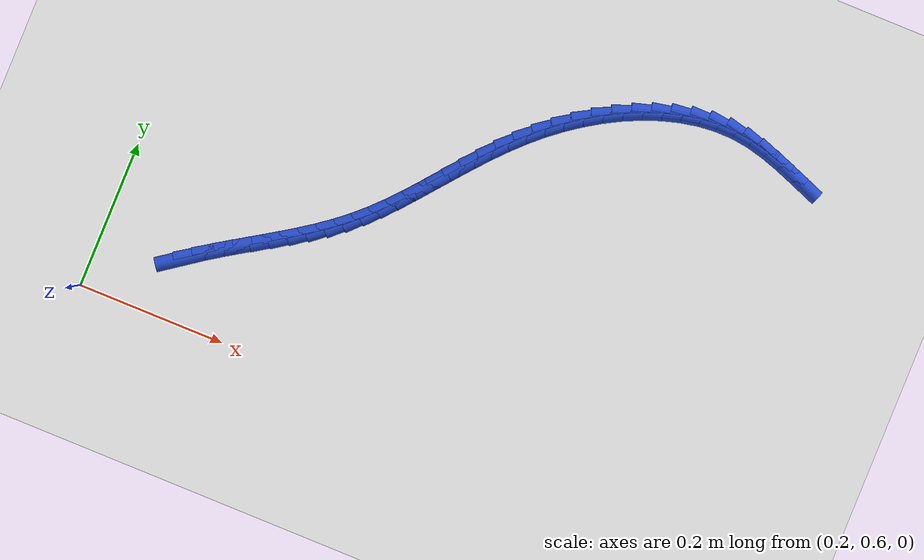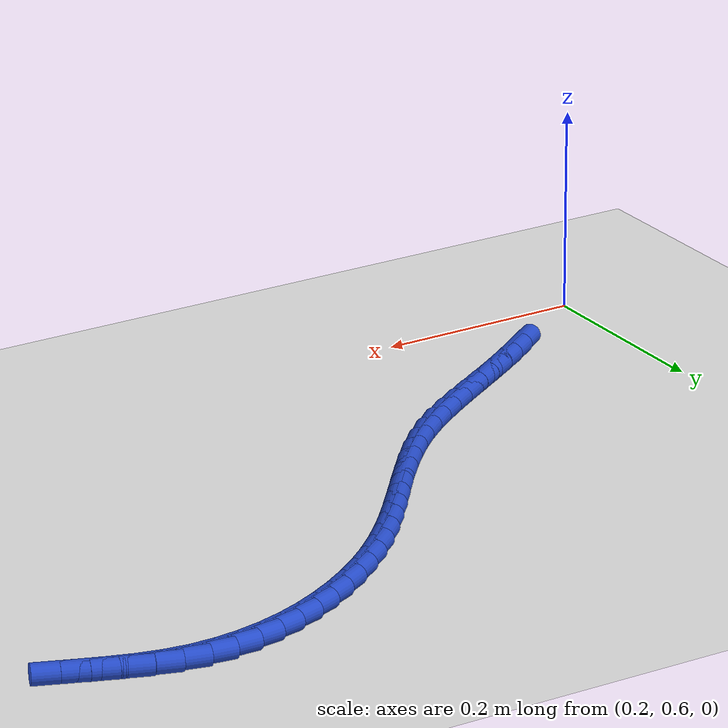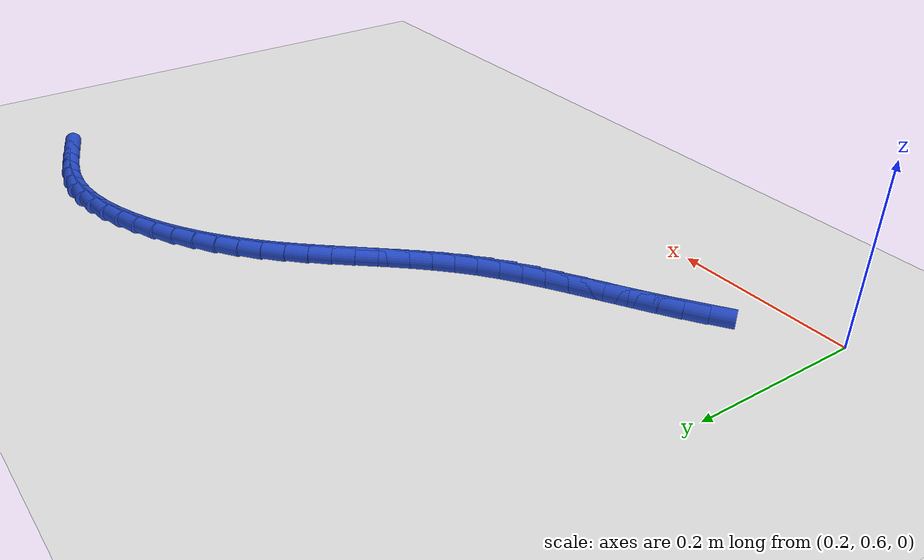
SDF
<sdf version="1.6">
 <world name="default">
  <model name="ground_plane">
   <static>1</static>
   <link name="link">
    <collision name="collision">
     <geometry><plane><normal>0 0 1</normal><size>100 100</size></plane></geometry>
     <surface><friction><ode><mu>100</mu><mu2>50</mu2></ode></friction></surface>
    </collision>
    <visual name="visual">
     <cast_shadows>0</cast_shadows>
     <geometry><plane><normal>0 0 1</normal><size>100 100</size></plane></geometry>
     <material>
      <script><uri>file://media/materials/scripts/gazebo.material</uri><name>Gazebo/WhiteGlow</name></script>
     </material>
    </visual>
   </link>
  </model>
  <model name="line">
   <link name="link_31">
    <pose>0.31368566309640433 0.6857718107445425 0.01 0 1.57 0.6217759222436743</pose>
    <collision name="collision">
     <geometry><cylinder><radius>0.01</radius><length>0.08</length></cylinder></geometry>
    </collision>
    <visual name="visual">
     <material>
      <script><name>Gazebo/Blue</name><uri>file://media/materials/scripts/gazebo.material</uri></script>
     </material>
     <geometry><cylinder><radius>0.01</radius><length>0.08</length></cylinder></geometry>
    </visual>
   </link>
   <link name="link_32">
    <pose>0.33407692760737157 0.7003840575855007 0.01 0 1.57 0.5919932194578194</pose>
    <collision name="collision">
     <geometry><cylinder><radius>0.01</radius><length>0.08</length></cylinder></geometry>
    </collision>
    <visual name="visual">
     <material>
      <script><name>Gazebo/Blue</name><uri>file://media/materials/scripts/gazebo.material</uri></script>
     </material>
     <geometry><cylinder><radius>0.01</radius><length>0.08</length></cylinder></geometry>
    </visual>
   </link>
   <link name="link_33">
    <pose>0.3549926616917402 0.714448765509468 0.01 0 1.57 0.5733930223101903</pose>
    <collision name="collision">
     <geometry><cylinder><radius>0.01</radius><length>0.08</length></cylinder></geometry>
    </collision>
    <visual name="visual">
     <material>
      <script><name>Gazebo/Blue</name><uri>file://media/materials/scripts/gazebo.material</uri></script>
     </material>
     <geometry><cylinder><radius>0.01</radius><length>0.08</length></cylinder></geometry>
    </visual>
   </link>
   <link name="link_34">
    <pose>0.37623146227066 0.7281640611793464 0.01 0 1.57 0.565761881200285</pose>
    <collision name="collision">
     <geometry><cylinder><radius>0.01</radius><length>0.08</length></cylinder></geometry>
    </collision>
    <visual name="visual">
     <material>
      <script><name>Gazebo/Blue</name><uri>file://media/materials/scripts/gazebo.material</uri></script>
     </material>
     <geometry><cylinder><radius>0.01</radius><length>0.08</length></cylinder></geometry>
    </visual>
   </link>
   <link name="link_35">
    <pose>0.3975919262652808 0.741728071258038 0.01 0 1.57 0.5690193621223153</pose>
    <collision name="collision">
     <geometry><cylinder><radius>0.01</radius><length>0.08</length></cylinder></geometry>
    </collision>
    <visual name="visual">
     <material>
      <script><name>Gazebo/Blue</name><uri>file://media/materials/scripts/gazebo.material</uri></script>
     </material>
     <geometry><cylinder><radius>0.01</radius><length>0.08</length></cylinder></geometry>
    </visual>
   </link>
   <link name="link_36">
    <pose>0.4188726505967526 0.7553389224084452 0.01 0 1.57 0.5832434651503329</pose>
    <collision name="collision">
     <geometry><cylinder><radius>0.01</radius><length>0.08</length></cylinder></geometry>
    </collision>
    <visual name="visual">
     <material>
      <script><name>Gazebo/Blue</name><uri>file://media/materials/scripts/gazebo.material</uri></script>
     </material>
     <geometry><cylinder><radius>0.01</radius><length>0.08</length></cylinder></geometry>
    </visual>
   </link>
   <link name="link_37">
    <pose>0.4398722321862252 0.7691947412934705 0.01 0 1.57 0.608661786370115</pose>
    <collision name="collision">
     <geometry><cylinder><radius>0.01</radius><length>0.08</length></cylinder></geometry>
    </collision>
    <visual name="visual">
     <material>
      <script><name>Gazebo/Blue</name><uri>file://media/materials/scripts/gazebo.material</uri></script>
     </material>
     <geometry><cylinder><radius>0.01</radius><length>0.08</length></cylinder></geometry>
    </visual>
   </link>
   <link name="link_38">
    <pose>0.46038926795484836 0.7834936545760157 0.01 0 1.57 0.6456055839524886</pose>
    <collision name="collision">
     <geometry><cylinder><radius>0.01</radius><length>0.08</length></cylinder></geometry>
    </collision>
    <visual name="visual">
     <material>
      <script><name>Gazebo/Blue</name><uri>file://media/materials/scripts/gazebo.material</uri></script>
     </material>
     <geometry><cylinder><radius>0.01</radius><length>0.08</length></cylinder></geometry>
    </visual>
   </link>
   <link name="link_39">
    <pose>0.48022235482377185 0.7984337889189832 0.01 0 1.57 0.6944174701596125</pose>
    <collision name="collision">
     <geometry><cylinder><radius>0.01</radius><length>0.08</length></cylinder></geometry>
    </collision>
    <visual name="visual">
     <material>
      <script><name>Gazebo/Blue</name><uri>file://media/materials/scripts/gazebo.material</uri></script>
     </material>
     <geometry><cylinder><radius>0.01</radius><length>0.08</length></cylinder></geometry>
    </visual>
   </link>
   <link name="link_40">
    <pose>0.49917008971414545 0.8142132709852751 0.01 0 1.57 0.7520376965207981</pose>
    <collision name="collision">
     <geometry><cylinder><radius>0.01</radius><length>0.08</length></cylinder></geometry>
    </collision>
    <visual name="visual">
     <material>
      <script><name>Gazebo/Blue</name><uri>file://media/materials/scripts/gazebo.material</uri></script>
     </material>
     <geometry><cylinder><radius>0.01</radius><length>0.08</length></cylinder></geometry>
    </visual>
   </link>
   <link name="link_41">
    <pose>0.5170914558307381 0.8309770935633699 0.01 0 1.57 0.802877534121172</pose>
    <collision name="collision">
     <geometry><cylinder><radius>0.01</radius><length>0.08</length></cylinder></geometry>
    </collision>
    <visual name="visual">
     <material>
      <script><name>Gazebo/Blue</name><uri>file://media/materials/scripts/gazebo.material</uri></script>
     </material>
     <geometry><cylinder><radius>0.01</radius><length>0.08</length></cylinder></geometry>
    </visual>
   </link>
   <link name="link_42">
    <pose>0.5341289133847011 0.8486208181014416 0.01 0 1.57 0.8419807267060411</pose>
    <collision name="collision">
     <geometry><cylinder><radius>0.01</radius><length>0.08</length></cylinder></geometry>
    </collision>
    <visual name="visual">
     <material>
      <script><name>Gazebo/Blue</name><uri>file://media/materials/scripts/gazebo.material</uri></script>
     </material>
     <geometry><cylinder><radius>0.01</radius><length>0.08</length></cylinder></geometry>
    </visual>
   </link>
   <link name="link_43">
    <pose>0.5505080331699483 0.8669668770686445 0.01 0 1.57 0.8691960006259388</pose>
    <collision name="collision">
     <geometry><cylinder><radius>0.01</radius><length>0.08</length></cylinder></geometry>
    </collision>
    <visual name="visual">
     <material>
      <script><name>Gazebo/Blue</name><uri>file://media/materials/scripts/gazebo.material</uri></script>
     </material>
     <geometry><cylinder><radius>0.01</radius><length>0.08</length></cylinder></geometry>
    </visual>
   </link>
   <link name="link_44">
    <pose>0.5664543967383258 0.8858376934682319 0.01 0 1.57 0.8845878296593362</pose>
    <collision name="collision">
     <geometry><cylinder><radius>0.01</radius><length>0.08</length></cylinder></geometry>
    </collision>
    <visual name="visual">
     <material>
      <script><name>Gazebo/Blue</name><uri>file://media/materials/scripts/gazebo.material</uri></script>
     </material>
     <geometry><cylinder><radius>0.01</radius><length>0.08</length></cylinder></geometry>
    </visual>
   </link>
   <link name="link_45">
    <pose>0.5821935856416789 0.9050556903034573 0.01 0 1.57 0.8883191486361897</pose>
    <collision name="collision">
     <geometry><cylinder><radius>0.01</radius><length>0.08</length></cylinder></geometry>
    </collision>
    <visual name="visual">
     <material>
      <script><name>Gazebo/Blue</name><uri>file://media/materials/scripts/gazebo.material</uri></script>
     </material>
     <geometry><cylinder><radius>0.01</radius><length>0.08</length></cylinder></geometry>
    </visual>
   </link>
   <link name="link_46">
    <pose>0.5979511814318536 0.924443290577574 0.01 0 1.57 0.8805852383725722</pose>
    <collision name="collision">
     <geometry><cylinder><radius>0.01</radius><length>0.08</length></cylinder></geometry>
    </collision>
    <visual name="visual">
     <material>
      <script><name>Gazebo/Blue</name><uri>file://media/materials/scripts/gazebo.material</uri></script>
     </material>
     <geometry><cylinder><radius>0.01</radius><length>0.08</length></cylinder></geometry>
    </visual>
   </link>
   <link name="link_47">
    <pose>0.613952765660696 0.9438229172938362 0.01 0 1.57 0.8615970234336856</pose>
    <collision name="collision">
     <geometry><cylinder><radius>0.01</radius><length>0.08</length></cylinder></geometry>
    </collision>
    <visual name="visual">
     <material>
      <script><name>Gazebo/Blue</name><uri>file://media/materials/scripts/gazebo.material</uri></script>
     </material>
     <geometry><cylinder><radius>0.01</radius><length>0.08</length></cylinder></geometry>
    </visual>
   </link>
   <link name="link_48">
    <pose>0.6304239198800514 0.9630169934554969 0.01 0 1.57 0.8316088480989581</pose>
    <collision name="collision">
     <geometry><cylinder><radius>0.01</radius><length>0.08</length></cylinder></geometry>
    </collision>
    <visual name="visual">
     <material>
      <script><name>Gazebo/Blue</name><uri>file://media/materials/scripts/gazebo.material</uri></script>
     </material>
     <geometry><cylinder><radius>0.01</radius><length>0.08</length></cylinder></geometry>
    </visual>
   </link>
   <link name="link_49">
    <pose>0.6475902256417657 0.9818479420658095 0.01 0 1.57 0.7909841521365294</pose>
    <collision name="collision">
     <geometry><cylinder><radius>0.01</radius><length>0.08</length></cylinder></geometry>
    </collision>
    <visual name="visual">
     <material>
      <script><name>Gazebo/Blue</name><uri>file://media/materials/scripts/gazebo.material</uri></script>
     </material>
     <geometry><cylinder><radius>0.01</radius><length>0.08</length></cylinder></geometry>
    </visual>
   </link>
   <link name="link_50">
    <pose>0.6656772644976847 1.0001381861280276 0.01 0 1.57 0.7403847587094323</pose>
    <collision name="collision">
     <geometry><cylinder><radius>0.01</radius><length>0.08</length></cylinder></geometry>
    </collision>
    <visual name="visual">
     <material>
      <script><name>Gazebo/Blue</name><uri>file://media/materials/scripts/gazebo.material</uri></script>
     </material>
     <geometry><cylinder><radius>0.01</radius><length>0.08</length></cylinder></geometry>
    </visual>
   </link>
   <link name="link_51">
    <pose>0.6849066985267032 1.0177099530618334 0.01 0 1.57 0.684148161096767</pose>
    <collision name="collision">
     <geometry><cylinder><radius>0.01</radius><length>0.08</length></cylinder></geometry>
    </collision>
    <visual name="visual">
     <material>
      <script><name>Gazebo/Blue</name><uri>file://media/materials/scripts/gazebo.material</uri></script>
     </material>
     <geometry><cylinder><radius>0.01</radius><length>0.08</length></cylinder></geometry>
    </visual>
   </link>
   <link name="link_52">
    <pose>0.7053442329618272 1.034377687965857 0.01 0 1.57 0.6265645961025219</pose>
    <collision name="collision">
     <geometry><cylinder><radius>0.01</radius><length>0.08</length></cylinder></geometry>
    </collision>
    <visual name="visual">
     <material>
      <script><name>Gazebo/Blue</name><uri>file://media/materials/scripts/gazebo.material</uri></script>
     </material>
     <geometry><cylinder><radius>0.01</radius><length>0.08</length></cylinder></geometry>
    </visual>
   </link>
   <link name="link_53">
    <pose>0.7268508794668234 1.0499456216319174 0.01 0 1.57 0.5668106795794612</pose>
    <collision name="collision">
     <geometry><cylinder><radius>0.01</radius><length>0.08</length></cylinder></geometry>
    </collision>
    <visual name="visual">
     <material>
      <script><name>Gazebo/Blue</name><uri>file://media/materials/scripts/gazebo.material</uri></script>
     </material>
     <geometry><cylinder><radius>0.01</radius><length>0.08</length></cylinder></geometry>
    </visual>
   </link>
   <link name="link_54">
    <pose>0.7492737563738415 1.0642172915679537 0.01 0 1.57 0.5037209179061823</pose>
    <collision name="collision">
     <geometry><cylinder><radius>0.01</radius><length>0.08</length></cylinder></geometry>
    </collision>
    <visual name="visual">
     <material>
      <script><name>Gazebo/Blue</name><uri>file://media/materials/scripts/gazebo.material</uri></script>
     </material>
     <geometry><cylinder><radius>0.01</radius><length>0.08</length></cylinder></geometry>
    </visual>
   </link>
   <link name="link_55">
    <pose>0.7724599820150326 1.0769962352819054 0.01 0 1.57 0.4360967059583024</pose>
    <collision name="collision">
     <geometry><cylinder><radius>0.01</radius><length>0.08</length></cylinder></geometry>
    </collision>
    <visual name="visual">
     <material>
      <script><name>Gazebo/Blue</name><uri>file://media/materials/scripts/gazebo.material</uri></script>
     </material>
     <geometry><cylinder><radius>0.01</radius><length>0.08</length></cylinder></geometry>
    </visual>
   </link>
   <link name="link_56">
    <pose>0.7962566747225474 1.088085990281712 0.01 0 1.57 0.3626958006954847</pose>
    <collision name="collision">
     <geometry><cylinder><radius>0.01</radius><length>0.08</length></cylinder></geometry>
    </collision>
    <visual name="visual">
     <material>
      <script><name>Gazebo/Blue</name><uri>file://media/materials/scripts/gazebo.material</uri></script>
     </material>
     <geometry><cylinder><radius>0.01</radius><length>0.08</length></cylinder></geometry>
    </visual>
   </link>
   <link name="link_57">
    <pose>0.8205109528285361 1.0972900940753127 0.01 0 1.57 0.2822531162521812</pose>
    <collision name="collision">
     <geometry><cylinder><radius>0.01</radius><length>0.08</length></cylinder></geometry>
    </collision>
    <visual name="visual">
     <material>
      <script><name>Gazebo/Blue</name><uri>file://media/materials/scripts/gazebo.material</uri></script>
     </material>
     <geometry><cylinder><radius>0.01</radius><length>0.08</length></cylinder></geometry>
    </visual>
   </link>
   <link name="link_58">
    <pose>0.8450699346651498 1.104412084170648 0.01 0 1.57 0.19355021864870442</pose>
    <collision name="collision">
     <geometry><cylinder><radius>0.01</radius><length>0.08</length></cylinder></geometry>
    </collision>
    <visual name="visual">
     <material>
      <script><name>Gazebo/Blue</name><uri>file://media/materials/scripts/gazebo.material</uri></script>
     </material>
     <geometry><cylinder><radius>0.01</radius><length>0.08</length></cylinder></geometry>
    </visual>
   </link>
   <link name="link_59">
    <pose>0.8697807385645391 1.1092554980756564 0.01 0 1.57 0.09555591956888013</pose>
    <collision name="collision">
     <geometry><cylinder><radius>0.01</radius><length>0.08</length></cylinder></geometry>
    </collision>
    <visual name="visual">
     <material>
      <script><name>Gazebo/Blue</name><uri>file://media/materials/scripts/gazebo.material</uri></script>
     </material>
     <geometry><cylinder><radius>0.01</radius><length>0.08</length></cylinder></geometry>
    </visual>
   </link>
   <link name="link_60">
    <pose>0.8944904828588546 1.111623873298278 0.01 0 1.57 -0.012343744402836077</pose>
    <collision name="collision">
     <geometry><cylinder><radius>0.01</radius><length>0.08</length></cylinder></geometry>
    </collision>
    <visual name="visual">
     <material>
      <script><name>Gazebo/Blue</name><uri>file://media/materials/scripts/gazebo.material</uri></script>
     </material>
     <geometry><cylinder><radius>0.01</radius><length>0.08</length></cylinder></geometry>
    </visual>
   </link>
   <link name="link_61">
    <pose>0.9190462858802466 1.1113207473464515 0.01 0 1.57 -0.12947252034225032</pose>
    <collision name="collision">
     <geometry><cylinder><radius>0.01</radius><length>0.08</length></cylinder></geometry>
    </collision>
    <visual name="visual">
     <material>
      <script><name>Gazebo/Blue</name><uri>file://media/materials/scripts/gazebo.material</uri></script>
     </material>
     <geometry><cylinder><radius>0.01</radius><length>0.08</length></cylinder></geometry>
    </visual>
   </link>
   <link name="link_62">
    <pose>0.9432990869372014 1.1081630118040486 0.01 0 1.57 -0.2369191574358031</pose>
    <collision name="collision">
     <geometry><cylinder><radius>0.01</radius><length>0.08</length></cylinder></geometry>
    </collision>
    <visual name="visual">
     <material>
      <script><name>Gazebo/Blue</name><uri>file://media/materials/scripts/gazebo.material</uri></script>
     </material>
     <geometry><cylinder><radius>0.01</radius><length>0.08</length></cylinder></geometry>
    </visual>
   </link>
   <link name="link_63">
    <pose>0.967219907651552 1.102387238511926 0.01 0 1.57 -0.31272852563635484</pose>
    <collision name="collision">
     <geometry><cylinder><radius>0.01</radius><length>0.08</length></cylinder></geometry>
    </collision>
    <visual name="visual">
     <material>
      <script><name>Gazebo/Blue</name><uri>file://media/materials/scripts/gazebo.material</uri></script>
     </material>
     <geometry><cylinder><radius>0.01</radius><length>0.08</length></cylinder></geometry>
    </visual>
   </link>
   <link name="link_64">
    <pose>0.9909210442095936 1.0947237451746465 0.01 0 1.57 -0.3566112879373679</pose>
    <collision name="collision">
     <geometry><cylinder><radius>0.01</radius><length>0.08</length></cylinder></geometry>
    </collision>
    <visual name="visual">
     <material>
      <script><name>Gazebo/Blue</name><uri>file://media/materials/scripts/gazebo.material</uri></script>
     </material>
     <geometry><cylinder><radius>0.01</radius><length>0.08</length></cylinder></geometry>
    </visual>
   </link>
   <link name="link_65">
    <pose>1.014522887352018 1.0859311394636713 0.01 0 1.57 -0.3700236242596915</pose>
    <collision name="collision">
     <geometry><cylinder><radius>0.01</radius><length>0.08</length></cylinder></geometry>
    </collision>
    <visual name="visual">
     <material>
      <script><name>Gazebo/Blue</name><uri>file://media/materials/scripts/gazebo.material</uri></script>
     </material>
     <geometry><cylinder><radius>0.01</radius><length>0.08</length></cylinder></geometry>
    </visual>
   </link>
  </model>
 </world>
</sdf>
